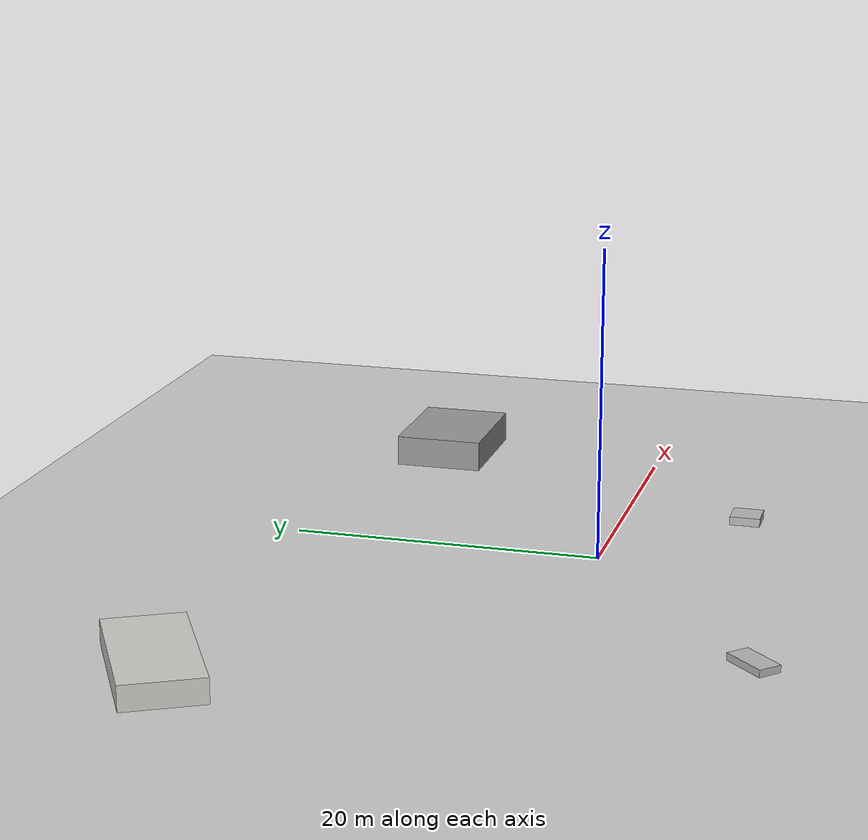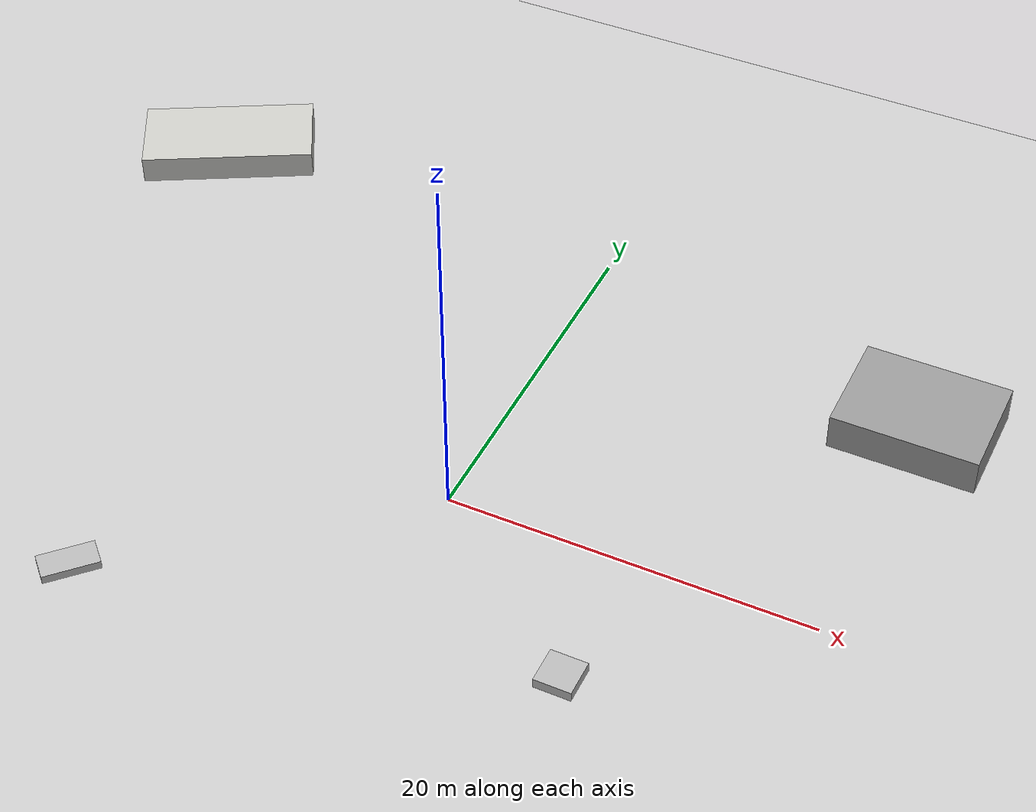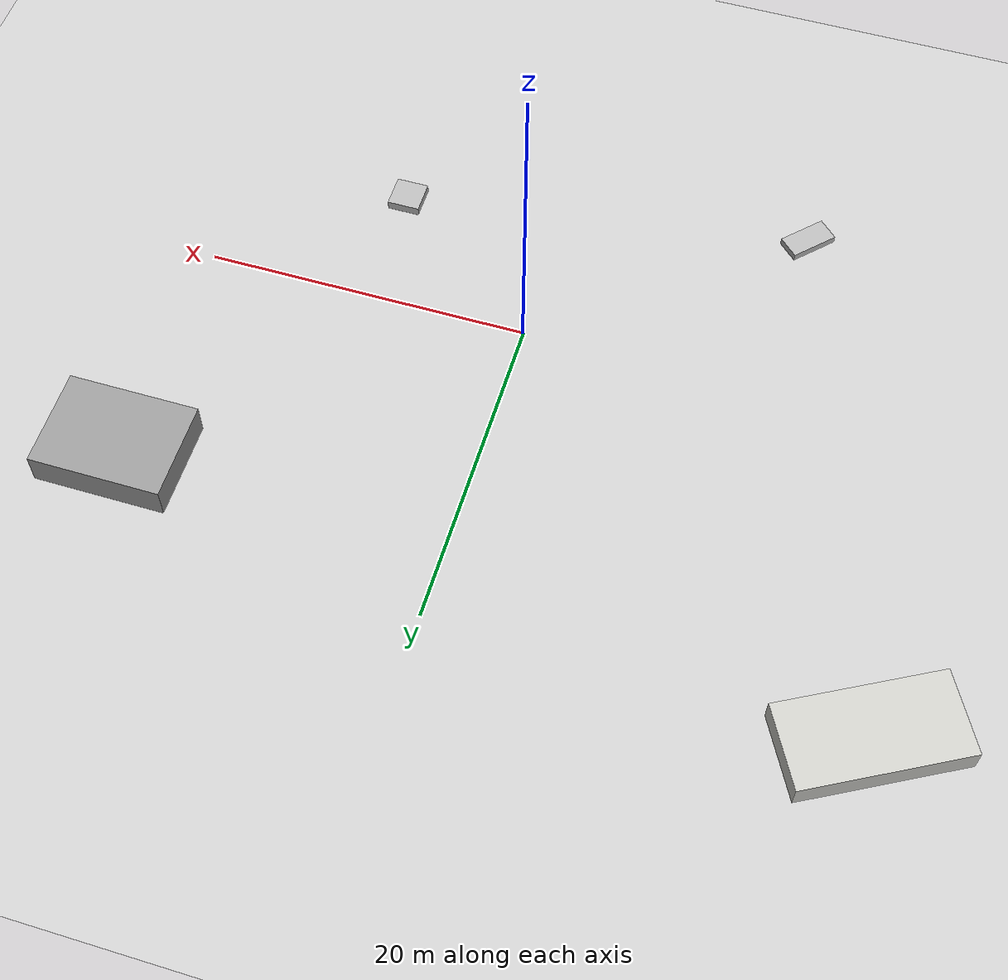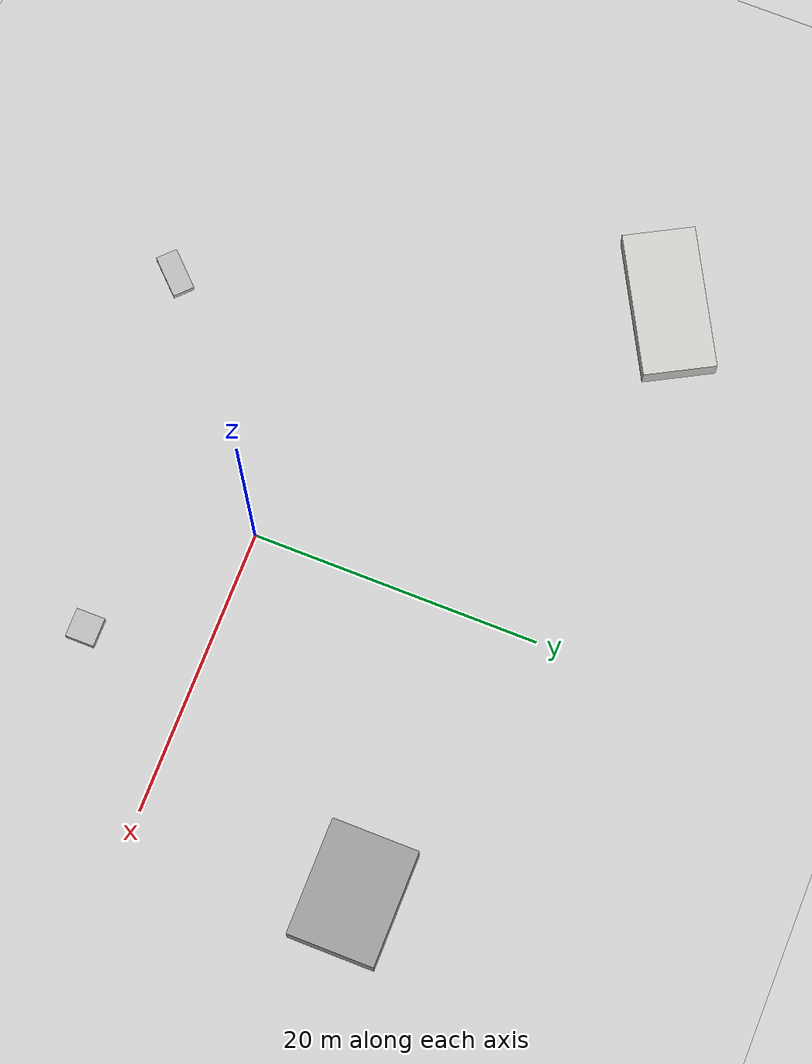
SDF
<?xml version="1.0" ?>
<sdf version="1.6">
  <world name="battlefield">

    <!-- Physics settings -->
    <physics type="ode">
      <max_step_size>0.001</max_step_size>
      <real_time_factor>1</real_time_factor>
      <real_time_update_rate>1000</real_time_update_rate>
      <gravity>0 0 -9.81</gravity>
    </physics>

    <!-- Lighting -->
    <include>
      <uri>model://sun</uri>
    </include>

    <!-- Ground plane with desert texture -->
    <model name="ground_plane">
      <static>true</static>
      <link name="link">
        <collision name="collision">
          <geometry>
            <plane>
              <normal>0 0 1</normal>
              <size>200 200</size>
            </plane>
          </geometry>
          <surface>
            <friction>
              <ode>
                <mu>100</mu>
                <mu2>50</mu2>
              </ode>
            </friction>
          </surface>
        </collision>
        <visual name="visual">
          <cast_shadows>false</cast_shadows>
          <geometry>
            <plane>
              <normal>0 0 1</normal>
              <size>200 200</size>
            </plane>
          </geometry>
          <material>
            <script>
              <uri>file://media/materials/scripts/gazebo.material</uri>
              <name>Gazebo/Dirt</name>
            </script>
          </material>
        </visual>
      </link>
    </model>

    <!-- Atmospheric effects -->
    <scene>
      <ambient>0.5 0.5 0.5 1</ambient>
      <background>0.5 0.7 0.9 1</background>
      <shadows>true</shadows>
      <sky>
        <clouds>
          <speed>12</speed>
        </clouds>
      </sky>
    </scene>

    <!-- Add some obstacles/buildings for battlefield realism -->
    <model name="building_1">
      <static>true</static>
      <pose>20 15 0 0 0 0</pose>
      <link name="link">
        <collision name="collision">
          <geometry>
            <box>
              <size>8 6 4</size>
            </box>
          </geometry>
        </collision>
        <visual name="visual">
          <geometry>
            <box>
              <size>8 6 4</size>
            </box>
          </geometry>
          <material>
            <script>
              <uri>file://media/materials/scripts/gazebo.material</uri>
              <name>Gazebo/Grey</name>
            </script>
          </material>
        </visual>
      </link>
    </model>

    <model name="building_2">
      <static>true</static>
      <pose>-25 20 0 0 0 0.5</pose>
      <link name="link">
        <collision name="collision">
          <geometry>
            <box>
              <size>10 5 3</size>
            </box>
          </geometry>
        </collision>
        <visual name="visual">
          <geometry>
            <box>
              <size>10 5 3</size>
            </box>
          </geometry>
          <material>
            <script>
              <uri>file://media/materials/scripts/gazebo.material</uri>
              <name>Gazebo/CeilingTiled</name>
            </script>
          </material>
        </visual>
      </link>
    </model>

    <!-- Rocks/debris -->
    <model name="debris_1">
      <static>true</static>
      <pose>10 -8 0 0 0 0</pose>
      <link name="link">
        <collision name="collision">
          <geometry>
            <box>
              <size>2 2 1</size>
            </box>
          </geometry>
        </collision>
        <visual name="visual">
          <geometry>
            <box>
              <size>2 2 1</size>
            </box>
          </geometry>
          <material>
            <script>
              <uri>file://media/materials/scripts/gazebo.material</uri>
              <name>Gazebo/Rocky</name>
            </script>
          </material>
        </visual>
      </link>
    </model>

    <model name="debris_2">
      <static>true</static>
      <pose>-15 -12 0 0 0 0.8</pose>
      <link name="link">
        <collision name="collision">
          <geometry>
            <box>
              <size>3 1.5 0.8</size>
            </box>
          </geometry>
        </collision>
        <visual name="visual">
          <geometry>
            <box>
              <size>3 1.5 0.8</size>
            </box>
          </geometry>
          <material>
            <script>
              <uri>file://media/materials/scripts/gazebo.material</uri>
              <name>Gazebo/Rocky</name>
            </script>
          </material>
        </visual>
      </link>
    </model>

    <!-- GUI settings -->
    <gui fullscreen='0'>
      <camera name='user_camera'>
        <pose>-20 -20 15 0 0.4 0.785</pose>
        <view_controller>orbit</view_controller>
      </camera>
    </gui>

  </world>
</sdf>
